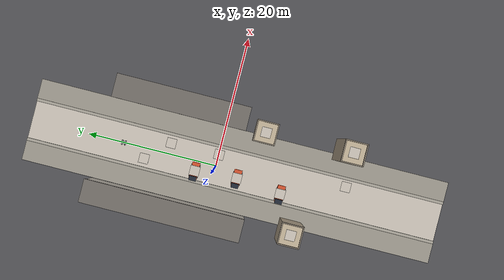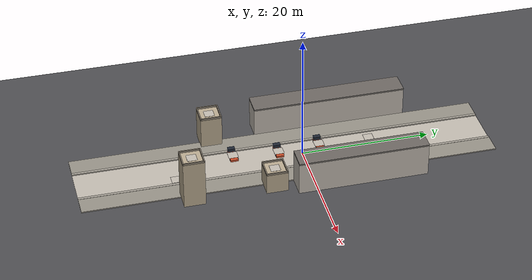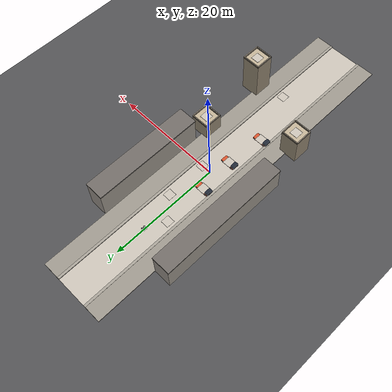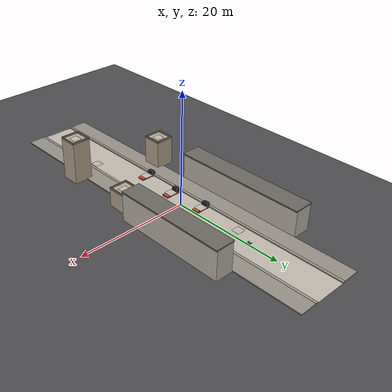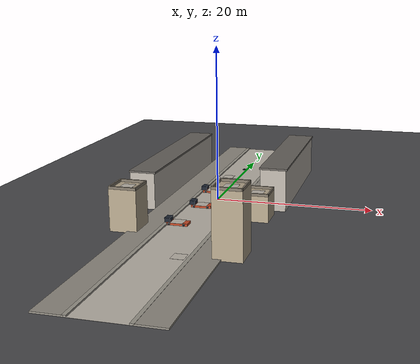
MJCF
<mujoco model="airtag_addressed_landing">
  <!-- GENERATED BY world/build_world.py - edit config.py, not this file -->

  <compiler angle="radian" autolimits="true" balanceinertia="true" meshdir="." texturedir="."/>
  <option gravity="0 0 -9.81" timestep="0.002" integrator="RK4" density="1.2" viscosity="0.0"/>

  <default>
    <joint damping="0.002"/>
    <geom condim="4" friction="1.0 0.05 0.005" solref="0.012 1" solimp="0.9 0.95 0.001"/>
  </default>

  <asset>
    <texture name="sky" type="skybox" builtin="gradient"
             rgb1="0.52 0.62 0.75" rgb2="0.16 0.20 0.28" width="512" height="512"/>
    <texture name="street_tex" type="2d" file="street_tex.png"/>
    <material name="street_mat" texture="street_tex" texrepeat="1 14" shininess="0.05" specular="0.03"/>
    <material name="asphalt_mat" rgba="0.30 0.30 0.31 1" shininess="0.02"/>
    <material name="pavement_mat" rgba="0.58 0.56 0.52 1" shininess="0.04"/>
    <texture name="brick_tex" type="2d" file="brick_tex.png"/>
    <material name="brick_mat" texture="brick_tex" texrepeat="3 8" shininess="0.03"/>
    <texture name="stucco_tex" type="2d" file="stucco_tex.png"/>
    <material name="stucco_mat" texture="stucco_tex" texrepeat="3 8" shininess="0.03"/>

    <material name="roof_sheet" rgba="0.42 0.40 0.38 1" shininess="0.2"/>
    <material name="apartment_mat" rgba="0.72 0.66 0.56 1" shininess="0.05"/>
    <material name="parapet_mat" rgba="0.52 0.48 0.42 1" shininess="0.05"/>
    <material name="kerb_mat" rgba="0.62 0.60 0.56 1"/>
    <material name="veh_body_mat" rgba="0.78 0.30 0.16 1" shininess="0.5"/>
    <material name="veh_glass" rgba="0.12 0.15 0.20 1" shininess="0.9" specular="0.7"/>
    <material name="tyre_mat" rgba="0.08 0.08 0.09 1"/>
    <material name="drone_shell" rgba="0.16 0.18 0.20 1" shininess="0.4" specular="0.3"/>
    <material name="drone_accent" rgba="0.10 0.11 0.12 1" shininess="0.5"/>
    <material name="motor_mat" rgba="0.35 0.38 0.42 1" shininess="0.8" specular="0.6"/>
    <material name="prop_mat" rgba="0.12 0.14 0.16 0.5"/>
    <material name="led_red" rgba="1.0 0.25 0.25 1" emission="1.0"/>
    <material name="led_green" rgba="0.25 1.0 0.45 1" emission="1.0"/>
    <material name="lens_mat" rgba="0.02 0.02 0.05 1" shininess="1.0" specular="0.9"/>
    <texture name="pad_tex_1" type="2d" file="pad_1.png"/>
    <material name="pad_mat_1" texture="pad_tex_1" texrepeat="1 1"
              shininess="0.05" specular="0.05" reflectance="0.0"/>
    <texture name="pad_tex_2" type="2d" file="pad_2.png"/>
    <material name="pad_mat_2" texture="pad_tex_2" texrepeat="1 1"
              shininess="0.05" specular="0.05" reflectance="0.0"/>
    <texture name="pad_tex_3" type="2d" file="pad_3.png"/>
    <material name="pad_mat_3" texture="pad_tex_3" texrepeat="1 1"
              shininess="0.05" specular="0.05" reflectance="0.0"/>
    <texture name="pad_tex_4" type="2d" file="pad_4.png"/>
    <material name="pad_mat_4" texture="pad_tex_4" texrepeat="1 1"
              shininess="0.05" specular="0.05" reflectance="0.0"/>
    <texture name="pad_tex_5" type="2d" file="pad_5.png"/>
    <material name="pad_mat_5" texture="pad_tex_5" texrepeat="1 1"
              shininess="0.05" specular="0.05" reflectance="0.0"/>
    <texture name="pad_tex_6" type="2d" file="pad_6.png"/>
    <material name="pad_mat_6" texture="pad_tex_6" texrepeat="1 1"
              shininess="0.05" specular="0.05" reflectance="0.0"/>
    <texture name="pad_tex_7" type="2d" file="pad_7.png"/>
    <material name="pad_mat_7" texture="pad_tex_7" texrepeat="1 1"
              shininess="0.05" specular="0.05" reflectance="0.0"/>
    <texture name="pad_tex_8" type="2d" file="pad_8.png"/>
    <material name="pad_mat_8" texture="pad_tex_8" texrepeat="1 1"
              shininess="0.05" specular="0.05" reflectance="0.0"/>
    <texture name="pad_tex_9" type="2d" file="pad_9.png"/>
    <material name="pad_mat_9" texture="pad_tex_9" texrepeat="1 1"
              shininess="0.05" specular="0.05" reflectance="0.0"/>
    <texture name="pad_tex_10" type="2d" file="pad_10.png"/>
    <material name="pad_mat_10" texture="pad_tex_10" texrepeat="1 1"
              shininess="0.05" specular="0.05" reflectance="0.0"/>
  </asset>

  <statistic extent="10" center="0 0 2"/>

  <visual>
    <!-- the offscreen buffer has to be at least as large as any render we ask
         for, including the wide overview shots used in the report figures -->
    <global offwidth="1600" offheight="1200"/>
    <headlight ambient="0.62 0.62 0.62" diffuse="0.65 0.65 0.63" specular="0.12 0.12 0.12"/>
    <quality shadowsize="4096" offsamples="8"/>
    <map znear="0.004" zfar="15"/>
  </visual>

  <worldbody>
    <light name="sun" directional="true" pos="6 6 25" dir="-0.3 -0.4 -1"
           diffuse="0.65 0.64 0.60" specular="0.15 0.15 0.15" castshadow="true"/>

    <geom name="ground" type="plane" size="60 60 0.1" material="asphalt_mat" pos="0 0 0"/>
    <geom name="roadway" type="box" size="2.9 32 0.006" pos="0 -3 0.006" material="street_mat"/>
    <geom name="pavement_l" type="box" size="1.6 32 0.09" pos="-4.75 -3 0.09" material="pavement_mat"/>
    <geom name="pavement_r" type="box" size="1.6 32 0.09" pos=" 4.75 -3 0.09" material="pavement_mat"/>
    <geom name="kerb_left"  type="box" size="0.22 32 0.10" pos="-3.1 -3 0.10" material="kerb_mat"/>
    <geom name="kerb_right" type="box" size="0.22 32 0.10" pos=" 3.1 -3 0.10" material="kerb_mat"/>

    <!-- background terraces. They stop short of the generated apartment
         blocks so that a roof pad is never buried inside a wall. -->
    <body name="terrace_left" pos="-8.0 6.0 0">
      <geom name="tl_wall" type="box" size="1.6 12.0 2.3" pos="0 0 2.3" material="brick_mat"/>
      <geom name="tl_roof" type="box" size="1.75 12.0 0.12" pos="0 0 4.7" material="roof_sheet"/>
    </body>
    <body name="terrace_right" pos="8.0 7.0 0">
      <geom name="tr_wall" type="box" size="1.6 10.0 2.6" pos="0 0 2.6" material="stucco_mat"/>
      <geom name="tr_roof" type="box" size="1.75 10.0 0.12" pos="0 0 5.3" material="roof_sheet"/>
    </body>

    <!-- ================= the ten addressed landing pads ================= -->

    <body name="pad_1" pos="-1.600 11.000 0.012">
      <geom name="pad_1_deck" type="box" size="0.750 0.750 0.010"
            material="pad_mat_1" contype="1" conaffinity="1" friction="1.2 0.05 0.005"/>
    </body>

    <body name="pad_2" pos="1.700 7.500 0.012">
      <geom name="pad_2_deck" type="box" size="0.750 0.750 0.010"
            material="pad_mat_2" contype="1" conaffinity="1" friction="1.2 0.05 0.005"/>
    </body>

    <body name="veh_3" mocap="true" pos="-1.500 3.000 0.0">
      <geom name="veh_3_bed" type="box" size="1.30 0.60 0.16" pos="0 0 0.16"
            material="veh_body_mat" contype="1" conaffinity="1"/>
      <geom name="veh_3_cab" type="box" size="0.34 0.55 0.26" pos="-1.18 0 0.58"
            material="veh_glass" contype="1" conaffinity="1"/>
      <geom name="veh_3_wfl" type="cylinder" size="0.15 0.06" pos="0.85 0.62 0.15"
            euler="1.5708 0 0" material="tyre_mat"/>
      <geom name="veh_3_wfr" type="cylinder" size="0.15 0.06" pos="0.85 -0.62 0.15"
            euler="1.5708 0 0" material="tyre_mat"/>
      <geom name="veh_3_wrl" type="cylinder" size="0.15 0.06" pos="-0.95 0.62 0.15"
            euler="1.5708 0 0" material="tyre_mat"/>
      <geom name="veh_3_wrr" type="cylinder" size="0.15 0.06" pos="-0.95 -0.62 0.15"
            euler="1.5708 0 0" material="tyre_mat"/>
      <geom name="pad_3_deck" type="box" size="0.750 0.750 0.010" pos="0 0 0.33"
            material="pad_mat_3" contype="1" conaffinity="1" friction="1.2 0.05 0.005"/>
    </body>

    <body name="pad_4" pos="1.800 0.000 0.012">
      <geom name="pad_4_deck" type="box" size="0.750 0.750 0.010"
            material="pad_mat_4" contype="1" conaffinity="1" friction="1.2 0.05 0.005"/>
    </body>

    <body name="veh_5" mocap="true" pos="-1.000 -3.500 0.0">
      <geom name="veh_5_bed" type="box" size="1.30 0.60 0.16" pos="0 0 0.16"
            material="veh_body_mat" contype="1" conaffinity="1"/>
      <geom name="veh_5_cab" type="box" size="0.34 0.55 0.26" pos="-1.18 0 0.58"
            material="veh_glass" contype="1" conaffinity="1"/>
      <geom name="veh_5_wfl" type="cylinder" size="0.15 0.06" pos="0.85 0.62 0.15"
            euler="1.5708 0 0" material="tyre_mat"/>
      <geom name="veh_5_wfr" type="cylinder" size="0.15 0.06" pos="0.85 -0.62 0.15"
            euler="1.5708 0 0" material="tyre_mat"/>
      <geom name="veh_5_wrl" type="cylinder" size="0.15 0.06" pos="-0.95 0.62 0.15"
            euler="1.5708 0 0" material="tyre_mat"/>
      <geom name="veh_5_wrr" type="cylinder" size="0.15 0.06" pos="-0.95 -0.62 0.15"
            euler="1.5708 0 0" material="tyre_mat"/>
      <geom name="pad_5_deck" type="box" size="0.750 0.750 0.010" pos="0 0 0.33"
            material="pad_mat_5" contype="1" conaffinity="1" friction="1.2 0.05 0.005"/>
    </body>

    <body name="block_6" pos="6.800 -6.000 0.0">
      <geom name="block_6_wall" type="box" size="1.650 1.650 1.600"
            pos="0 0 1.600" material="apartment_mat" contype="1" conaffinity="1"/>
      <geom name="block_6_parapet_n" type="box" size="1.650 0.08 0.16"
            pos="0 1.570 3.360" material="parapet_mat"/>
      <geom name="block_6_parapet_s" type="box" size="1.650 0.08 0.16"
            pos="0 -1.570 3.360" material="parapet_mat"/>
      <geom name="block_6_parapet_e" type="box" size="0.08 1.650 0.16"
            pos="1.570 0 3.360" material="parapet_mat"/>
      <geom name="block_6_parapet_w" type="box" size="0.08 1.650 0.16"
            pos="-1.570 0 3.360" material="parapet_mat"/>
      <geom name="pad_6_deck" type="box" size="0.750 0.750 0.010"
            pos="0 0 3.212"
            material="pad_mat_6" contype="1" conaffinity="1" friction="1.2 0.05 0.005"/>
    </body>

    <body name="veh_7" mocap="true" pos="-1.700 -10.500 0.0">
      <geom name="veh_7_bed" type="box" size="1.30 0.60 0.16" pos="0 0 0.16"
            material="veh_body_mat" contype="1" conaffinity="1"/>
      <geom name="veh_7_cab" type="box" size="0.34 0.55 0.26" pos="-1.18 0 0.58"
            material="veh_glass" contype="1" conaffinity="1"/>
      <geom name="veh_7_wfl" type="cylinder" size="0.15 0.06" pos="0.85 0.62 0.15"
            euler="1.5708 0 0" material="tyre_mat"/>
      <geom name="veh_7_wfr" type="cylinder" size="0.15 0.06" pos="0.85 -0.62 0.15"
            euler="1.5708 0 0" material="tyre_mat"/>
      <geom name="veh_7_wrl" type="cylinder" size="0.15 0.06" pos="-0.95 0.62 0.15"
            euler="1.5708 0 0" material="tyre_mat"/>
      <geom name="veh_7_wrr" type="cylinder" size="0.15 0.06" pos="-0.95 -0.62 0.15"
            euler="1.5708 0 0" material="tyre_mat"/>
      <geom name="pad_7_deck" type="box" size="0.750 0.750 0.010" pos="0 0 0.33"
            material="pad_mat_7" contype="1" conaffinity="1" friction="1.2 0.05 0.005"/>
    </body>

    <body name="block_8" pos="-6.800 -13.000 0.0">
      <geom name="block_8_wall" type="box" size="1.650 1.650 2.500"
            pos="0 0 2.500" material="apartment_mat" contype="1" conaffinity="1"/>
      <geom name="block_8_parapet_n" type="box" size="1.650 0.08 0.16"
            pos="0 1.570 5.160" material="parapet_mat"/>
      <geom name="block_8_parapet_s" type="box" size="1.650 0.08 0.16"
            pos="0 -1.570 5.160" material="parapet_mat"/>
      <geom name="block_8_parapet_e" type="box" size="0.08 1.650 0.16"
            pos="1.570 0 5.160" material="parapet_mat"/>
      <geom name="block_8_parapet_w" type="box" size="0.08 1.650 0.16"
            pos="-1.570 0 5.160" material="parapet_mat"/>
      <geom name="pad_8_deck" type="box" size="0.750 0.750 0.010"
            pos="0 0 5.012"
            material="pad_mat_8" contype="1" conaffinity="1" friction="1.2 0.05 0.005"/>
    </body>

    <body name="block_9" pos="7.000 -18.500 0.0">
      <geom name="block_9_wall" type="box" size="1.650 1.650 3.750"
            pos="0 0 3.750" material="apartment_mat" contype="1" conaffinity="1"/>
      <geom name="block_9_parapet_n" type="box" size="1.650 0.08 0.16"
            pos="0 1.570 7.660" material="parapet_mat"/>
      <geom name="block_9_parapet_s" type="box" size="1.650 0.08 0.16"
            pos="0 -1.570 7.660" material="parapet_mat"/>
      <geom name="block_9_parapet_e" type="box" size="0.08 1.650 0.16"
            pos="1.570 0 7.660" material="parapet_mat"/>
      <geom name="block_9_parapet_w" type="box" size="0.08 1.650 0.16"
            pos="-1.570 0 7.660" material="parapet_mat"/>
      <geom name="pad_9_deck" type="box" size="0.750 0.750 0.010"
            pos="0 0 7.512"
            material="pad_mat_9" contype="1" conaffinity="1" friction="1.2 0.05 0.005"/>
    </body>

    <body name="pad_10" pos="1.800 -20.000 0.012">
      <geom name="pad_10_deck" type="box" size="0.750 0.750 0.010"
            material="pad_mat_10" contype="1" conaffinity="1" friction="1.2 0.05 0.005"/>
    </body>

    <!-- ============================ the drone =========================== -->
    <body name="drone" pos="0.000 14.500 0.28">
      <freejoint name="drone_free"/>
      <inertial pos="0 0 0" mass="3.5" diaginertia="0.045 0.045 0.08"/>

      <geom name="fuselage" type="box" size="0.17 0.10 0.045" material="drone_shell"
            contype="1" conaffinity="1"/>
      <geom name="canopy" type="box" size="0.12 0.075 0.020" pos="0 0 0.055" material="drone_accent"/>

      <geom name="arm_fl" type="capsule" size="0.018" fromto="0.09 0.07 0 0.235 0.235 0" material="drone_shell"/>
      <geom name="arm_fr" type="capsule" size="0.018" fromto="0.09 -0.07 0 0.235 -0.235 0" material="drone_shell"/>
      <geom name="arm_rl" type="capsule" size="0.018" fromto="-0.09 0.07 0 -0.235 0.235 0" material="drone_shell"/>
      <geom name="arm_rr" type="capsule" size="0.018" fromto="-0.09 -0.07 0 -0.235 -0.235 0" material="drone_shell"/>

      <geom name="mot_fl" type="cylinder" size="0.030 0.028" pos="0.235 0.235 0.028" material="motor_mat"/>
      <geom name="mot_fr" type="cylinder" size="0.030 0.028" pos="0.235 -0.235 0.028" material="motor_mat"/>
      <geom name="mot_rl" type="cylinder" size="0.030 0.028" pos="-0.235 0.235 0.028" material="motor_mat"/>
      <geom name="mot_rr" type="cylinder" size="0.030 0.028" pos="-0.235 -0.235 0.028" material="motor_mat"/>

      <geom name="prop_fl" type="cylinder" size="0.150 0.004" pos="0.235 0.235 0.062" material="prop_mat" contype="0" conaffinity="0"/>
      <geom name="prop_fr" type="cylinder" size="0.150 0.004" pos="0.235 -0.235 0.062" material="prop_mat" contype="0" conaffinity="0"/>
      <geom name="prop_rl" type="cylinder" size="0.150 0.004" pos="-0.235 0.235 0.062" material="prop_mat" contype="0" conaffinity="0"/>
      <geom name="prop_rr" type="cylinder" size="0.150 0.004" pos="-0.235 -0.235 0.062" material="prop_mat" contype="0" conaffinity="0"/>

      <geom name="led_front" type="sphere" size="0.016" pos="0.19 0 -0.01" material="led_green"/>
      <geom name="led_rear" type="sphere" size="0.016" pos="-0.19 0 -0.01" material="led_red"/>

      <!-- landing gear: four legs, these are what actually touch the pad -->
      <geom name="leg_fl" type="capsule" size="0.011" fromto="0.14 0.11 -0.045 0.18 0.15 -0.20" material="drone_accent"/>
      <geom name="leg_fr" type="capsule" size="0.011" fromto="0.14 -0.11 -0.045 0.18 -0.15 -0.20" material="drone_accent"/>
      <geom name="leg_rl" type="capsule" size="0.011" fromto="-0.14 0.11 -0.045 -0.18 0.15 -0.20" material="drone_accent"/>
      <geom name="leg_rr" type="capsule" size="0.011" fromto="-0.14 -0.11 -0.045 -0.18 -0.15 -0.20" material="drone_accent"/>
      <geom name="skid_l" type="capsule" size="0.013" fromto="-0.20 0.15 -0.21 0.20 0.15 -0.21" material="drone_accent"
            contype="1" conaffinity="1" friction="1.4 0.1 0.01"/>
      <geom name="skid_r" type="capsule" size="0.013" fromto="-0.20 -0.15 -0.21 0.20 -0.15 -0.21" material="drone_accent"
            contype="1" conaffinity="1" friction="1.4 0.1 0.01"/>

      <!-- downward camera. euler 0 0 0 means the camera looks along body -z,
           i.e. straight down when the drone is level. The 180-degree roll that
           a naive setup uses points it at the sky. -->
      <geom name="cam_housing" type="box" size="0.030 0.030 0.018" pos="0.0 0.0 -0.09999999999999999" material="drone_accent"/>
      <geom name="cam_lens" type="cylinder" size="0.018 0.006" pos="0.0 0.0 -0.12" material="lens_mat"/>
      <camera name="onboard_cam" pos="0.0 0.0 -0.12" euler="0 0 0" fovy="60.0"/>

      <site name="thrust_site" pos="0 0 0" size="0.01"/>
      <site name="imu" pos="0 0 0" size="0.01"/>
      <site name="rangefinder" pos="0 0 -0.05" size="0.01" zaxis="0 0 -1"/>
    </body>
  </worldbody>

  <actuator>
    <general name="thrust" site="thrust_site" gear="0 0 1 0 0 0" ctrllimited="true" ctrlrange="0 75.5"/>
    <general name="torque_x" site="thrust_site" gear="0 0 0 1 0 0" ctrllimited="true" ctrlrange="-6 6"/>
    <general name="torque_y" site="thrust_site" gear="0 0 0 0 1 0" ctrllimited="true" ctrlrange="-6 6"/>
    <general name="torque_z" site="thrust_site" gear="0 0 0 0 0 1" ctrllimited="true" ctrlrange="-2 2"/>
  </actuator>

  <sensor>
    <framequat name="imu_quat" objtype="site" objname="imu"/>
    <gyro name="imu_gyro" site="imu"/>
    <accelerometer name="imu_acc" site="imu"/>
    <rangefinder name="alt_range" site="rangefinder"/>
  </sensor>
</mujoco>
